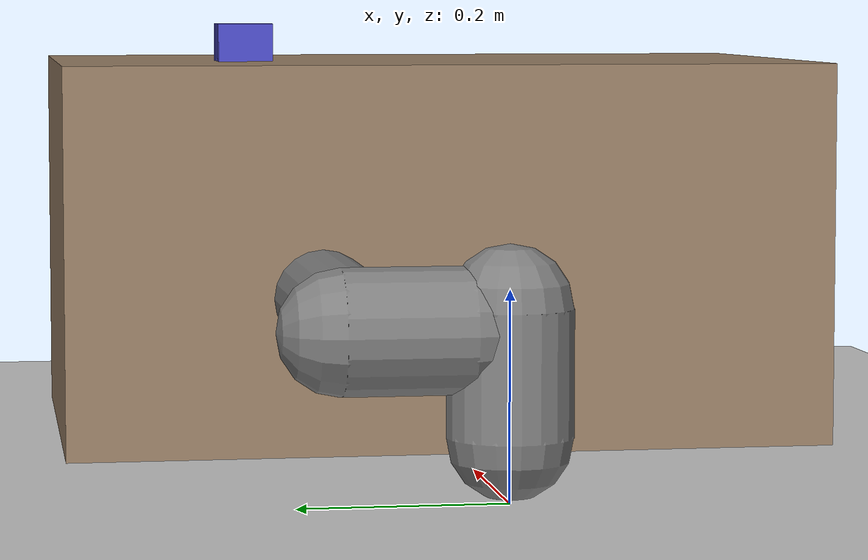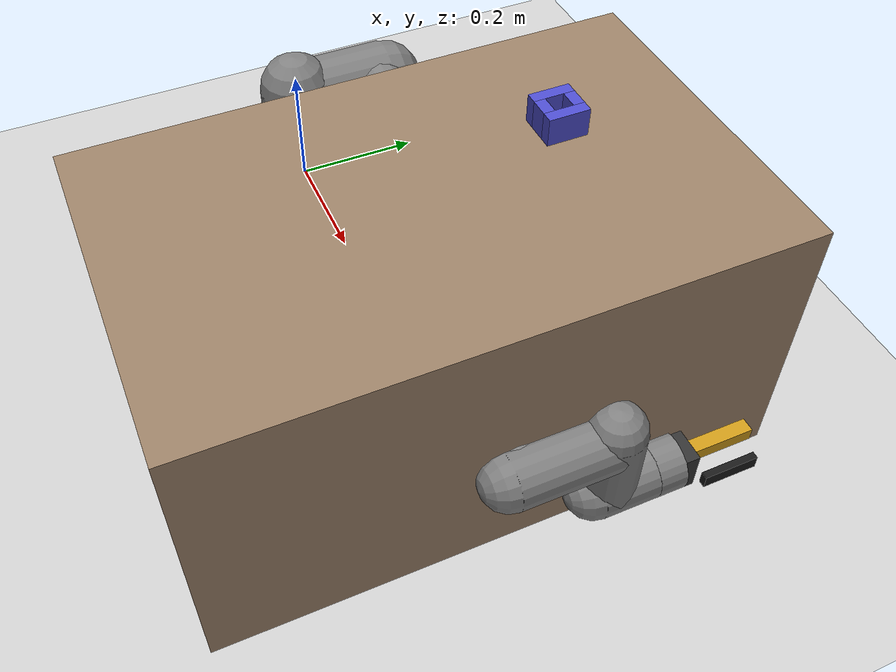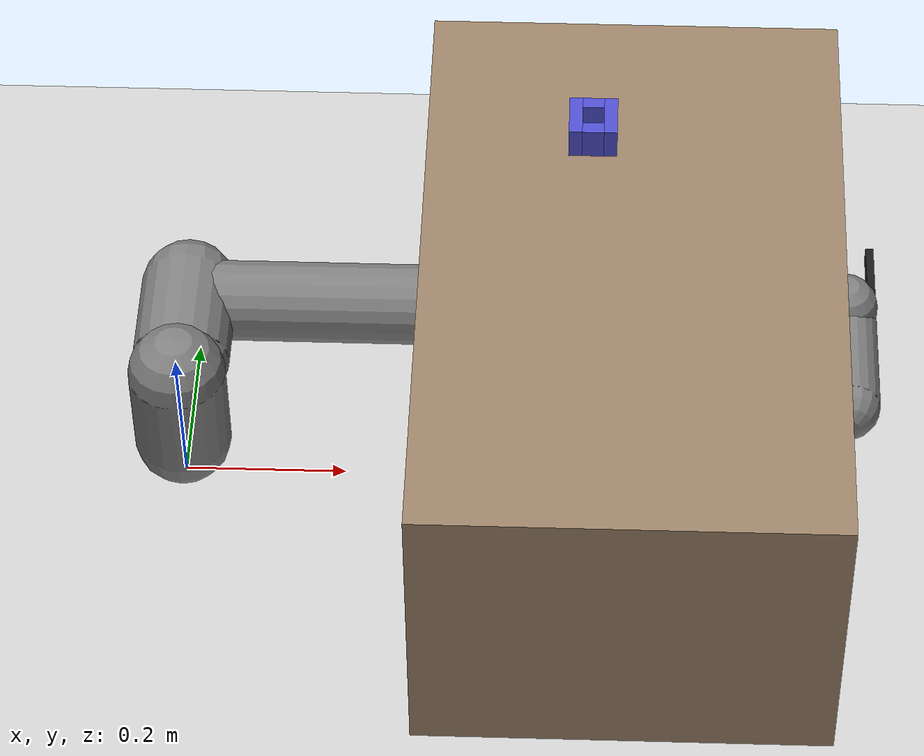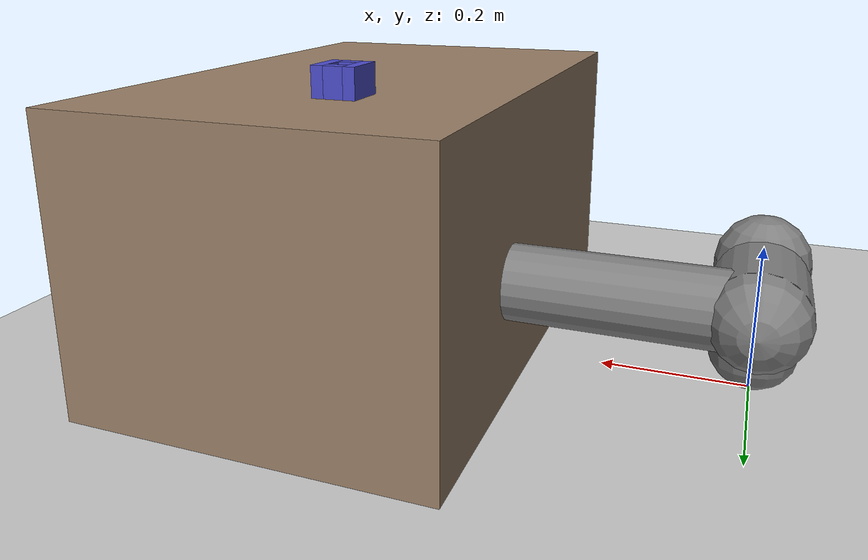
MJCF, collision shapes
<mujoco model="ur5e_peg">
  <include file="ur5e_peg.xml"/>
  <option timestep="0.002" gravity="0 0 -9.81"/>
  <visual><headlight diffuse="0.6 0.6 0.6" ambient="0.3 0.3 0.3"/></visual>
  <worldbody>
    <light pos="0 0 3" dir="0 0 -1"/>
    <geom name="floor" type="plane" size="3 3 0.1" rgba="0.8 0.8 0.8 1" friction="1 0.005 0.0001"/>
    <geom name="table" type="box" size="0.25 0.4 0.2" pos="0.55 0 0.2" rgba="0.6 0.5 0.4 1" friction="0.5 0.005 0.0001"/>
    <body name="fixture" pos="0.5 0.2 0.42">
      <geom name="wall_px" type="box" size="0.008 0.029 0.02" pos="0.021 0 0" friction="0.5 0.005 0.0001" rgba="0.3 0.3 0.8 1"/>
      <geom name="wall_nx" type="box" size="0.008 0.029 0.02" pos="-0.021 0 0" friction="0.5 0.005 0.0001" rgba="0.3 0.3 0.8 1"/>
      <geom name="wall_py" type="box" size="0.013000000000000001 0.008 0.02" pos="0 0.021 0" friction="0.5 0.005 0.0001" rgba="0.3 0.3 0.8 1"/>
      <geom name="wall_ny" type="box" size="0.013000000000000001 0.008 0.02" pos="0 -0.021 0" friction="0.5 0.005 0.0001" rgba="0.3 0.3 0.8 1"/>
    </body>
  </worldbody>
  <actuator>
    <motor name="finger_r" joint="finger_r_joint" ctrlrange="-8 8"/>
    <motor name="finger_l" joint="finger_l_joint" ctrlrange="-8 8"/>
  </actuator>
</mujoco>

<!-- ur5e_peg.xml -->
<mujoco model="ur5e">
  <compiler angle="radian" meshdir="assets" autolimits="true"/>

  <option integrator="implicitfast"/>

  <default>
    <default class="ur5e">
      <material specular="0.5" shininess="0.25"/>
      <joint axis="0 1 0" range="-6.28319 6.28319" armature="0.1"/>
      <general gaintype="fixed" biastype="affine" ctrlrange="-6.2831 6.2831" gainprm="2000" biasprm="0 -2000 -400"
        forcerange="-150 150"/>
      <default class="size3">
        <default class="size3_limited">
          <joint range="-3.1415 3.1415"/>
          <general ctrlrange="-3.1415 3.1415"/>
        </default>
      </default>
      <default class="size1">
        <general gainprm="500" biasprm="0 -500 -100" forcerange="-28 28"/>
      </default>
      <default class="visual">
        <geom type="mesh" contype="0" conaffinity="0" group="2"/>
      </default>
      <default class="collision">
        <geom type="capsule" group="3"/>
        <default class="eef_collision">
          <geom type="cylinder"/>
        </default>
      </default>
      <site size="0.001" rgba="0.5 0.5 0.5 0.3" group="4"/>
    </default>
  </default>

  <asset>
    <material class="ur5e" name="black" rgba="0.033 0.033 0.033 1"/>
    <material class="ur5e" name="jointgray" rgba="0.278 0.278 0.278 1"/>
    <material class="ur5e" name="linkgray" rgba="0.82 0.82 0.82 1"/>
    <material class="ur5e" name="urblue" rgba="0.49 0.678 0.8 1"/>

    <mesh file="base_0.obj"/>
    <mesh file="base_1.obj"/>
    <mesh file="shoulder_0.obj"/>
    <mesh file="shoulder_1.obj"/>
    <mesh file="shoulder_2.obj"/>
    <mesh file="upperarm_0.obj"/>
    <mesh file="upperarm_1.obj"/>
    <mesh file="upperarm_2.obj"/>
    <mesh file="upperarm_3.obj"/>
    <mesh file="forearm_0.obj"/>
    <mesh file="forearm_1.obj"/>
    <mesh file="forearm_2.obj"/>
    <mesh file="forearm_3.obj"/>
    <mesh file="wrist1_0.obj"/>
    <mesh file="wrist1_1.obj"/>
    <mesh file="wrist1_2.obj"/>
    <mesh file="wrist2_0.obj"/>
    <mesh file="wrist2_1.obj"/>
    <mesh file="wrist2_2.obj"/>
    <mesh file="wrist3.obj"/>
  </asset>

  <worldbody>
    <light name="spotlight" mode="targetbodycom" target="wrist_2_link" pos="0 -1 2"/>
    <body name="base" quat="1 0 0 0" childclass="ur5e">
      <inertial mass="4.0" pos="0 0 0" diaginertia="0.00443333156 0.00443333156 0.0072"/>
      <geom mesh="base_0" material="black" class="visual"/>
      <geom mesh="base_1" material="jointgray" class="visual"/>
      <body name="shoulder_link" pos="0 0 0.163">
        <inertial mass="3.7" pos="0 0 0" diaginertia="0.0102675 0.0102675 0.00666"/>
        <joint name="shoulder_pan_joint" class="size3" axis="0 0 1"/>
        <geom mesh="shoulder_0" material="urblue" class="visual"/>
        <geom mesh="shoulder_1" material="black" class="visual"/>
        <geom mesh="shoulder_2" material="jointgray" class="visual"/>
        <geom class="collision" size="0.06 0.06" pos="0 0 -0.04"/>
        <body name="upper_arm_link" pos="0 0.138 0" quat="1 0 1 0">
          <inertial mass="8.393" pos="0 0 0.2125" diaginertia="0.133886 0.133886 0.0151074"/>
          <joint name="shoulder_lift_joint" class="size3"/>
          <geom mesh="upperarm_0" material="linkgray" class="visual"/>
          <geom mesh="upperarm_1" material="black" class="visual"/>
          <geom mesh="upperarm_2" material="jointgray" class="visual"/>
          <geom mesh="upperarm_3" material="urblue" class="visual"/>
          <geom class="collision" pos="0 -0.04 0" quat="1 1 0 0" size="0.06 0.06"/>
          <geom class="collision" size="0.05 0.2" pos="0 0 0.2"/>
          <body name="forearm_link" pos="0 -0.131 0.425">
            <inertial mass="2.275" pos="0 0 0.196" diaginertia="0.0311796 0.0311796 0.004095"/>
            <joint name="elbow_joint" class="size3_limited"/>
            <geom mesh="forearm_0" material="urblue" class="visual"/>
            <geom mesh="forearm_1" material="linkgray" class="visual"/>
            <geom mesh="forearm_2" material="black" class="visual"/>
            <geom mesh="forearm_3" material="jointgray" class="visual"/>
            <geom class="collision" pos="0 0.08 0" quat="1 1 0 0" size="0.055 0.06"/>
            <geom class="collision" size="0.038 0.19" pos="0 0 0.2"/>
            <body name="wrist_1_link" pos="0 0 0.392" quat="1 0 1 0">
              <inertial mass="1.219" pos="0 0.127 0" diaginertia="0.0025599 0.0025599 0.0021942"/>
              <joint name="wrist_1_joint" class="size1"/>
              <geom mesh="wrist1_0" material="black" class="visual"/>
              <geom mesh="wrist1_1" material="urblue" class="visual"/>
              <geom mesh="wrist1_2" material="jointgray" class="visual"/>
              <geom class="collision" pos="0 0.05 0" quat="1 1 0 0" size="0.04 0.07"/>
              <body name="wrist_2_link" pos="0 0.127 0">
                <inertial mass="1.219" pos="0 0 0.1" diaginertia="0.0025599 0.0025599 0.0021942"/>
                <joint name="wrist_2_joint" axis="0 0 1" class="size1"/>
                <geom mesh="wrist2_0" material="black" class="visual"/>
                <geom mesh="wrist2_1" material="urblue" class="visual"/>
                <geom mesh="wrist2_2" material="jointgray" class="visual"/>
                <geom class="collision" size="0.04 0.06" pos="0 0 0.04"/>
                <geom class="collision" pos="0 0.02 0.1" quat="1 1 0 0" size="0.04 0.04"/>
                <body name="wrist_3_link" pos="0 0 0.1">
                  <inertial mass="0.1889" pos="0 0.0771683 0" quat="1 0 0 1"
                    diaginertia="0.000132134 9.90863e-05 9.90863e-05"/>
                  <joint name="wrist_3_joint" class="size1"/>
                  <geom material="linkgray" mesh="wrist3" class="visual"/>
                  <geom class="eef_collision" pos="0 0.08 0" quat="1 1 0 0" size="0.04 0.02"/>
                  <site name="attachment_site" pos="0 0.1 0" quat="-1 1 0 0"/>
                  <body name="gripper" pos="0 0.1 0" quat="-1 1 0 0">
                    <geom name="palm" type="box" size="0.03 0.03 0.01" pos="0 0 0.01"
                          mass="0.2" rgba="0.2 0.2 0.2 1"/>
                    <geom name="peg" type="box" size="0.01 0.01 0.05" pos="0 0 0.07" mass="0.1" friction="0.5 0.005 0.0001" rgba="0.8 0.6 0.1 1"/>
                    <body name="finger_r" pos="0.045 0 0.06">
                      <joint name="finger_r_joint" type="slide" axis="-1 0 0"
                             range="0 0.025" armature="0.001" damping="20"/>
                      <geom name="finger_r_geom" type="box" size="0.005 0.01 0.04"
                            mass="0.05" friction="0.5 0.005 0.0001" rgba="0.1 0.1 0.1 1"/>
                    </body>
                    <body name="finger_l" pos="-0.045 0 0.06">
                      <joint name="finger_l_joint" type="slide" axis="1 0 0"
                             range="0 0.025" armature="0.001" damping="20"/>
                      <geom name="finger_l_geom" type="box" size="0.005 0.01 0.04"
                            mass="0.05" friction="0.5 0.005 0.0001" rgba="0.1 0.1 0.1 1"/>
                    </body>
                  </body>
                </body>
              </body>
            </body>
          </body>
        </body>
      </body>
    </body>
  </worldbody>

  <actuator>
    <general class="size3" name="shoulder_pan" joint="shoulder_pan_joint"/>
    <general class="size3" name="shoulder_lift" joint="shoulder_lift_joint"/>
    <general class="size3_limited" name="elbow" joint="elbow_joint"/>
    <general class="size1" name="wrist_1" joint="wrist_1_joint"/>
    <general class="size1" name="wrist_2" joint="wrist_2_joint"/>
    <general class="size1" name="wrist_3" joint="wrist_3_joint"/>
  </actuator>

  <keyframe>
    <key name="home" qpos="-1.5708 -1.5708 1.5708 -1.5708 -1.5708 0" ctrl="-1.5708 -1.5708 1.5708 -1.5708 -1.5708 0"/>
  </keyframe>
</mujoco>
